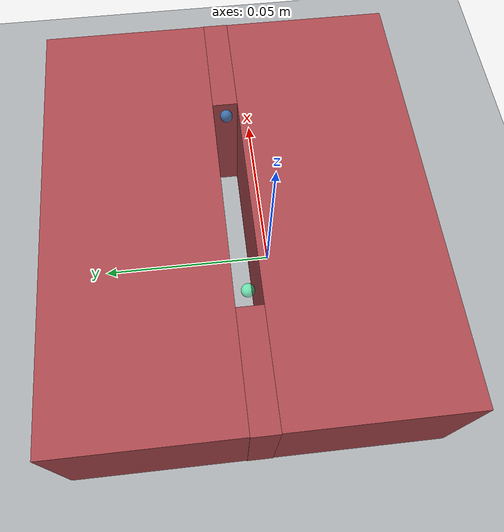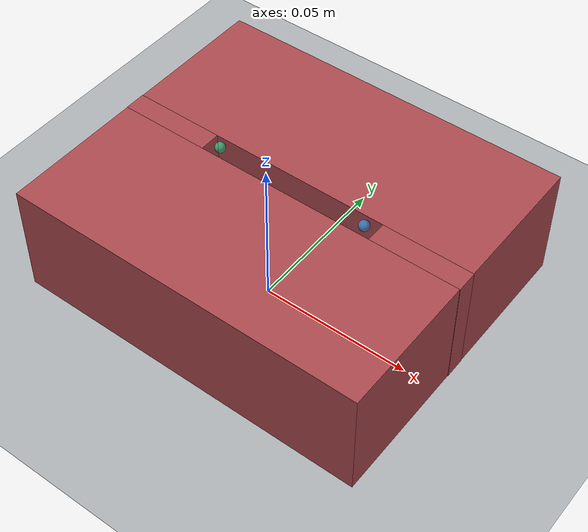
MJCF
<mujoco model="curved_needle_channel"><compiler angle="radian"/><option timestep=".002" integrator="implicitfast"/>
    <default><joint damping=".05"/><geom friction=".5 .005 .0001" solref=".006 1"/></default>
    <visual><global offwidth="960" offheight="720"/></visual><worldbody>
    <light pos="0 -.15 .4" diffuse="1 1 1"/><light pos=".15 .1 .25" diffuse=".6 .7 .8"/>
    <camera name="overview" pos=".095 -.17 .135" xyaxes=".88 .47 0 -.23 .43 .872"/>
    <geom name="floor" type="plane" size=".3 .3 .01" rgba=".12 .17 .21 1"/><geom name="pad_near" type="box" pos="0.0009644193713113369 -0.017352034858587065 0.019118304235963744" size="0.06 0.0235 0.019118304235963744" rgba=".66 .28 .30 1"/><geom name="pad_far" type="box" pos="0.0009644193713113369 0.036647965141412935 0.019118304235963744" size="0.06 0.0235 0.019118304235963744" rgba=".66 .28 .30 1"/><geom name="pad_left" type="box" pos="-0.04415407988250365 0.009647965141412935 0.019118304235963744" size="0.015 0.0035 0.019118304235963744" rgba=".66 .28 .30 1"/><geom name="pad_right" type="box" pos="0.046082918625126326 0.009647965141412935 0.019118304235963744" size="0.015 0.0035 0.019118304235963744" rgba=".66 .28 .30 1"/><geom name="entry" type="sphere" pos="-0.025154079882503656 0.009647965141412935 0.03823660847192749" size=".0017" contype="0" conaffinity="0" rgba=".2 .9 .6 .65"/><geom name="exit" type="sphere" pos="0.02708291862512633 0.009647965141412935 0.03823660847192749" size=".0017" contype="0" conaffinity="0" rgba=".2 .65 1 .65"/>
    <body name="driver" gravcomp="1"><inertial pos="0 0 0" mass=".15" diaginertia=".0001 .0001 .0001"/>
    <joint name="x" type="slide" axis="1 0 0"/><joint name="y" type="slide" axis="0 1 0"/><joint name="z" type="slide" axis="0 0 1"/>
    <joint name="needle_rotation" type="hinge" axis="0 -1 0"/><geom name="needle_0" type="capsule" fromto="-0.013059249626907491 0 -0.02261928386252869 -0.011038154753923045 0 -0.023671399259443462" size=".0006" rgba=".7 .76 .83 1"/><geom name="needle_1" type="capsule" fromto="-0.011038154753923045 0 -0.023671399259443462 -0.00893305285824117 0 -0.024543361014812203" size=".0006" rgba=".7 .76 .83 1"/><geom name="needle_2" type="capsule" fromto="-0.00893305285824117 0 -0.024543361014812203 -0.0067599650363832945 0 -0.025228532973171663" size=".0006" rgba=".7 .76 .83 1"/><geom name="needle_3" type="capsule" fromto="-0.0067599650363832945 0 -0.025228532973171663 -0.004535429798820047 0 -0.025721700562200578" size=".0006" rgba=".7 .76 .83 1"/><geom name="needle_4" type="capsule" fromto="-0.004535429798820047 0 -0.025721700562200578 -0.0022763772019203975 0 -0.026019110478763707" size=".0006" rgba=".7 .76 .83 1"/><geom name="needle_5" type="capsule" fromto="-0.0022763772019203975 0 -0.026019110478763707 1.5992968254858532e-18 0 -0.026118499253814993" size=".0006" rgba=".7 .76 .83 1"/><geom name="needle_6" type="capsule" fromto="1.5992968254858532e-18 0 -0.026118499253814993 0.002276377201920406 0 -0.026019110478763707" size=".0006" rgba=".7 .76 .83 1"/><geom name="needle_7" type="capsule" fromto="0.002276377201920406 0 -0.026019110478763707 0.004535429798820061 0 -0.025721700562200574" size=".0006" rgba=".7 .76 .83 1"/><geom name="needle_8" type="capsule" fromto="0.004535429798820061 0 -0.025721700562200574 0.006759965036383303 0 -0.02522853297317166" size=".0006" rgba=".7 .76 .83 1"/><geom name="needle_9" type="capsule" fromto="0.006759965036383303 0 -0.02522853297317166 0.008933052858241178 0 -0.024543361014812203" size=".0006" rgba=".7 .76 .83 1"/><geom name="needle_10" type="capsule" fromto="0.008933052858241178 0 -0.024543361014812203 0.011038154753923049 0 -0.02367139925944346" size=".0006" rgba=".7 .76 .83 1"/><geom name="needle_11" type="capsule" fromto="0.011038154753923049 0 -0.02367139925944346 0.0130592496269075 0 -0.022619283862528688" size=".0006" rgba=".7 .76 .83 1"/><geom name="needle_12" type="capsule" fromto="0.0130592496269075 0 -0.022619283862528688 0.014980955724840659 0 -0.02139502205752306" size=".0006" rgba=".7 .76 .83 1"/><geom name="needle_13" type="capsule" fromto="0.014980955724840659 0 -0.02139502205752306 0.016788647703959405 0 -0.020007931215992147" size=".0006" rgba=".7 .76 .83 1"/><geom name="needle_14" type="capsule" fromto="0.016788647703959405 0 -0.020007931215992147 0.018468567936788364 0 -0.018468567936788364" size=".0006" rgba=".7 .76 .83 1"/><geom name="needle_15" type="capsule" fromto="0.018468567936788364 0 -0.018468567936788364 0.02000793121599215 0 -0.016788647703959398" size=".0006" rgba=".7 .76 .83 1"/><geom name="needle_16" type="capsule" fromto="0.02000793121599215 0 -0.016788647703959398 0.02139502205752306 0 -0.014980955724840659" size=".0006" rgba=".7 .76 .83 1"/><geom name="needle_17" type="capsule" fromto="0.02139502205752306 0 -0.014980955724840659 0.02261928386252869 0 -0.013059249626907491" size=".0006" rgba=".7 .76 .83 1"/><geom name="needle_18" type="capsule" fromto="0.02261928386252869 0 -0.013059249626907491 0.02367139925944346 0 -0.011038154753923047" size=".0006" rgba=".7 .76 .83 1"/><geom name="needle_19" type="capsule" fromto="0.02367139925944346 0 -0.011038154753923047 0.024543361014812203 0 -0.008933052858241176" size=".0006" rgba=".7 .76 .83 1"/><geom name="needle_20" type="capsule" fromto="0.024543361014812203 0 -0.008933052858241176 0.025228532973171663 0 -0.006759965036383295" size=".0006" rgba=".7 .76 .83 1"/><geom name="needle_21" type="capsule" fromto="0.025228532973171663 0 -0.006759965036383295 0.025721700562200574 0 -0.004535429798820054" size=".0006" rgba=".7 .76 .83 1"/><geom name="needle_22" type="capsule" fromto="0.025721700562200574 0 -0.004535429798820054 0.026019110478763707 0 -0.002276377201920399" size=".0006" rgba=".7 .76 .83 1"/><geom name="needle_23" type="capsule" fromto="0.026019110478763707 0 -0.002276377201920399 0.026118499253814993 0 0.0" size=".0006" rgba=".7 .76 .83 1"/>
    <geom name="holder" type="capsule" fromto="-0.013059249626907491 -.003 -0.02261928386252869 -0.013059249626907491 -.024 -0.02261928386252869" size=".002" rgba=".25 .4 .65 1" contype="0" conaffinity="0"/>
    <site name="tip" pos="0.026118499253814993 0 0" size=".0008" rgba="1 .7 .15 1"/>
    </body></worldbody><actuator><position joint="x" kp="800" kv="22"/><position joint="y" kp="800" kv="22"/><position joint="z" kp="800" kv="22"/>
    <position joint="needle_rotation" kp="1.5" kv=".025"/></actuator></mujoco>
